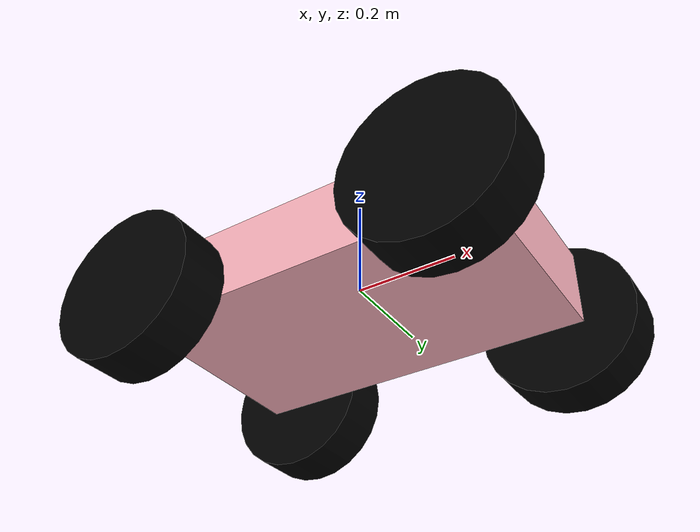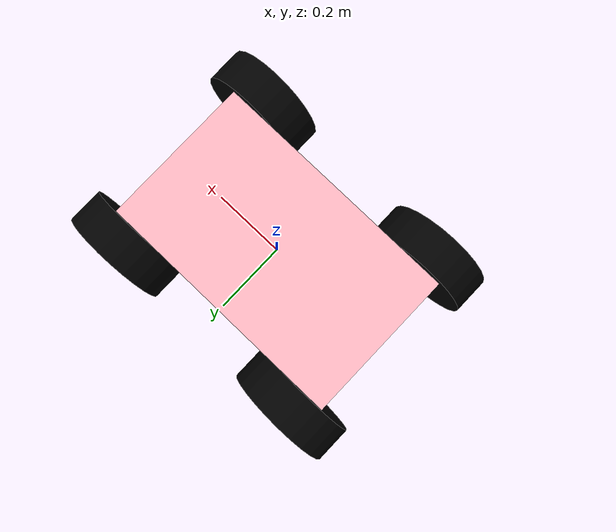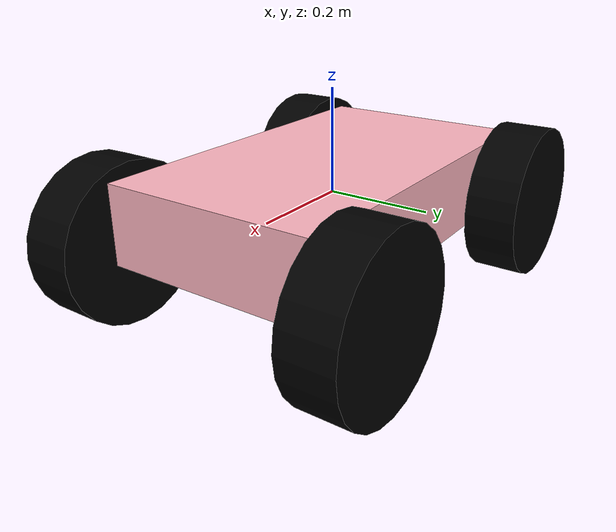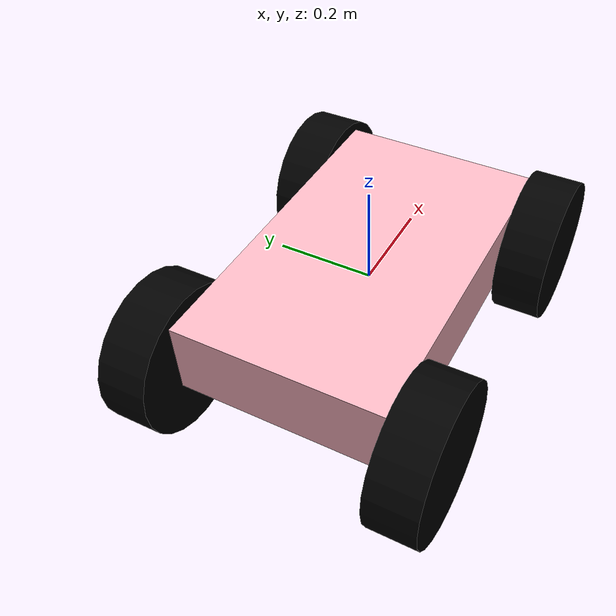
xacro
<?xml version="1.0"?>
<!-- RoseyBot Robot Description File -->
<robot xmlns:xacro="http://www.ros.org/wiki/xacro" name="roseybot">
  <xacro:arg name="use_mock_hardware" default="false" />

  <!-- Import Rviz colors -->
  <xacro:include filename="$(find myrosey_description)/urdf/description/roseybot_colors.urdf.xacro" />

  <xacro:include filename="$(find myrosey_description)/urdf/description/roseybot_description.urdf.xacro"/>

  <xacro:include filename="$(find myrosey_description)/urdf/description/roseybot_gazebo.urdf.xacro" />

  <!-- Import Sensors-->
  <xacro:include filename="$(find myrosey_description)/urdf/description/roseybot_sensors.urdf.xacro" />

</robot>

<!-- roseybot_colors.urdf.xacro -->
<!--
Copied from ROS2 Control Demo:
https://github.com/ros-controls/ros2_control_demos/blob/master/ros2_control_demo_description/diffbot/urdf/diffbot.materials.xacro
-->
<robot>

  <material name="black">
    <color rgba="0.0 0.0 0.0 1.0"/>
  </material>

  <material name="blue">
    <color rgba="0.0 0.0 0.8 1.0"/>
  </material>

  <material name="green">
    <color rgba="0.0 0.8 0.0 1.0"/>
  </material>

  <material name="grey">
    <color rgba="0.2 0.2 0.2 1.0"/>
  </material>

  <material name="orange">
    <color rgba="${255/255} ${108/255} ${10/255} 1.0"/>
  </material>

  <material name="brown">
    <color rgba="${222/255} ${207/255} ${195/255} 1.0"/>
  </material>

  <material name="red">
    <color rgba="0.8 0.0 0.0 1.0"/>
  </material>

  <material name="white">
    <color rgba="1.0 1.0 1.0 1.0"/>
  </material>

  <material name="pink">
    <color rgba= "${255/255} ${182/255} ${193/255} 1.0"/>
  </material>

</robot>

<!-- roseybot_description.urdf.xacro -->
<!-- RoseyBot Robot Description File -->
<robot xmlns:xacro="http://www.ros.org/wiki/xacro">

    <!-- properties for robot dimensions (in m)-->
    <xacro:property name="base_width" value="0.422"/>
    <xacro:property name="base_length" value="0.703"/>
    <xacro:property name="base_height" value="0.15"/>
    <xacro:property name="wheel_radius" value="0.1515"/>
    <xacro:property name="wheel_length" value="0.1"/>
    <xacro:property name="z_offset" value="0.05"/>
    <xacro:property name="x_offset" value="0.05"/>
    <xacro:property name="base_mass" value="12"/>
    <xacro:property name="wheel_mass" value="0.5"/>

    <!-- Define inertial property macros  -->
    <xacro:macro name="box_inertia" params="m w h d">
        <inertial>
        <origin xyz="0 0 0" rpy="${pi/2} 0 ${pi/2}"/>
        <mass value="${m}"/>
        <inertia ixx="${(m/12) * (h*h + d*d)}" ixy="0.0" ixz="0.0" iyy="${(m/12) * (w*w + d*d)}" iyz="0.0" izz="${(m/12) * (w*w + h*h)}"/>
        </inertial>
    </xacro:macro>

    <xacro:macro name="cylinder_inertia" params="m r h">
        <inertial>
        <origin xyz="0 0 0" rpy="${pi/2} 0 0" />
        <mass value="${m}"/>
        <inertia ixx="${(m/12) * (3*r*r + h*h)}" ixy = "0" ixz = "0" iyy="${(m/12) * (3*r*r + h*h)}" iyz = "0" izz="${(m/2) * (r*r)}"/>
        </inertial>
    </xacro:macro>

    <!-- define base link for rover (Primary Parent Link)-->
    <link name="base_link">
        <collision>
            <origin xyz="0 0 0" rpy= "0 0 0"/>
            <geometry>
                <box size="${base_length} ${base_width} ${base_height}"/>
            </geometry>
        </collision>

        <visual>
            <origin xyz="0 0 0" rpy="0 0 0"/>
            <geometry>
                <box size = "${base_length} ${base_width} ${base_height}"/>
            </geometry>
            <material name="pink"/>
        </visual>

        <xacro:box_inertia m ="${base_mass}" w="${base_width}" d="${base_length}" h="${base_height}"/>
    </link>

    <!-- define footprint of rover-->
    <link name="base_footprint"/>

    <joint name="base_joint" type="fixed">
        <parent link="base_link"/>
        <child link="base_footprint"/>
        <origin xyz="0 0 ${- (z_offset + wheel_radius) }"/>
    </joint>

    <!-- set up macro for wheel definitions -->
    <xacro:macro name="wheel" params="prefix x_reflect y_reflect">
        <joint name="${prefix}_wheel_joint" type="continuous">
            <parent link="base_link"/>
            <child link="${prefix}_wheel_link"/>
            <origin xyz="${x_reflect * ((base_length/2) - x_offset)} ${y_reflect * base_width/2} ${-z_offset}" rpy= "0 0 0"/>
            <axis xyz = "0 1 0"/>
        </joint>

        <link name="${prefix}_wheel_link">
            <collision>
                <origin xyz="0 ${wheel_length/2} 0" rpy= "${pi/2} 0 0"/>
                <geometry>
                    <cylinder radius="${wheel_radius}" length="${wheel_length}"/>
                </geometry>
            </collision>

            <visual>
                <origin xyz="0 ${y_reflect * wheel_length/2} 0" rpy="${pi/2} 0 0"/>
                <geometry>
                    <cylinder radius="${wheel_radius}" length="${wheel_length}"/>
                </geometry>
                <material name="black"/>
            </visual>

            <xacro:cylinder_inertia m="${wheel_mass}" r="${wheel_radius}" h="${wheel_length}"/>
        </link>
    </xacro:macro>

    <!-- call macros to define wheels-->
    <xacro:wheel prefix="front_left" x_reflect="1" y_reflect="1"/>
    <xacro:wheel prefix="front_right" x_reflect="1" y_reflect="-1"/>
    <xacro:wheel prefix="back_left" x_reflect="-1" y_reflect="1"/>
    <xacro:wheel prefix="back_right" x_reflect="-1" y_reflect="-1"/>

</robot>

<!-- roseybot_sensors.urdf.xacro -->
<robot xmlns:xacro="http://www.ros.org/wiki/xacro">
<!-- RoseyBot Sensor Description File -->

    <link name="imu_link">
    </link>

    <joint name="imu_joint" type="fixed">
        <parent link="base_link"/>
        <child link="imu_link"/>
        <origin xyz="0 0 0.05" rpy="0 0 0"/> <!-- Adjust? -->
    </joint>

    <!-- Gazebo Sensor Definition -->
    <gazebo reference="imu_link">
        <sensor name="imu_sensor" type="imu">
            <always_on>1</always_on>
            <update_rate>100</update_rate>
            <visualize>true</visualize>
            <topic>imu</topic>
            <imu>
                <angular_velocity>
                    <x>
                        <noise type="gaussian">
                            <mean>0.0</mean>
                            <stddev>2e-4</stddev>
                        </noise>
                    </x>
                    <y>
                        <noise type="gaussian">
                            <mean>0.0</mean>
                            <stddev>2e-4</stddev>
                        </noise>
                    </y>
                    <z>
                        <noise type="gaussian">
                            <mean>0.0</mean>
                            <stddev>2e-4</stddev>
                        </noise>
                    </z>
                </angular_velocity>
                <linear_acceleration>
                    <x>
                        <noise type="gaussian">
                            <mean>0.0</mean>
                            <stddev>1.7e-2</stddev>
                        </noise>
                    </x>
                    <y>
                        <noise type="gaussian">
                            <mean>0.0</mean>
                            <stddev>1.7e-2</stddev>
                        </noise>
                    </y>
                    <z>
                        <noise type="gaussian">
                            <mean>0.0</mean>
                            <stddev>1.7e-2</stddev>
                        </noise>
                    </z>
                </linear_acceleration>

            </imu>

        </sensor>

    </gazebo>

</robot>
